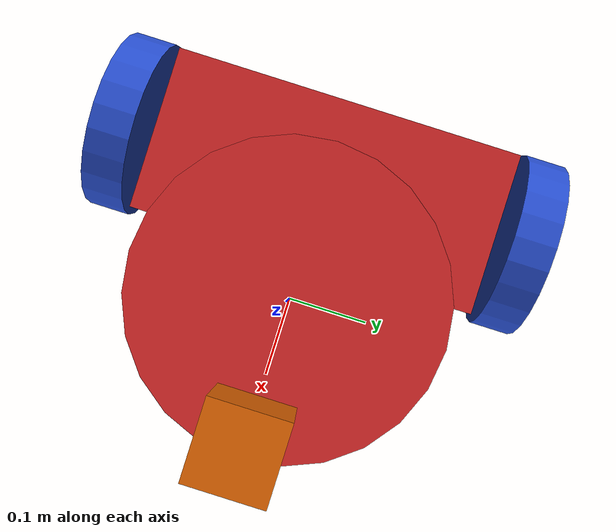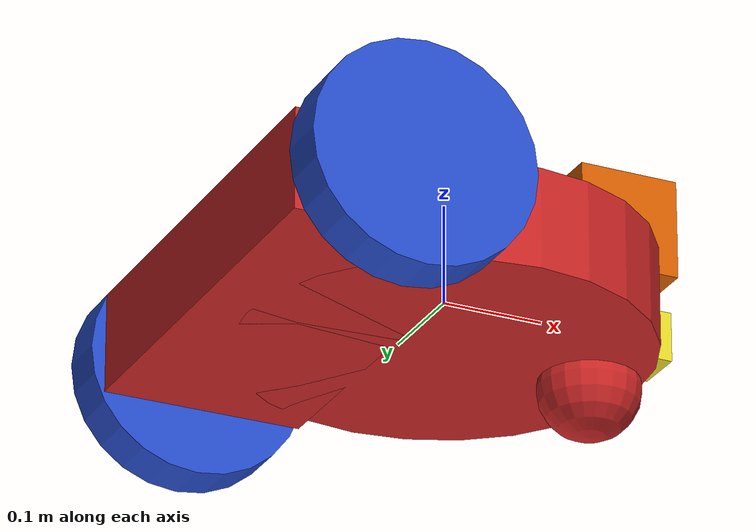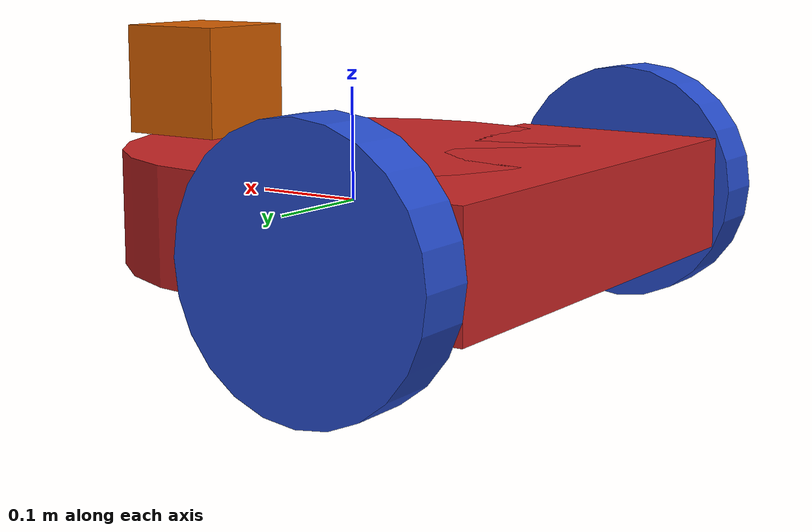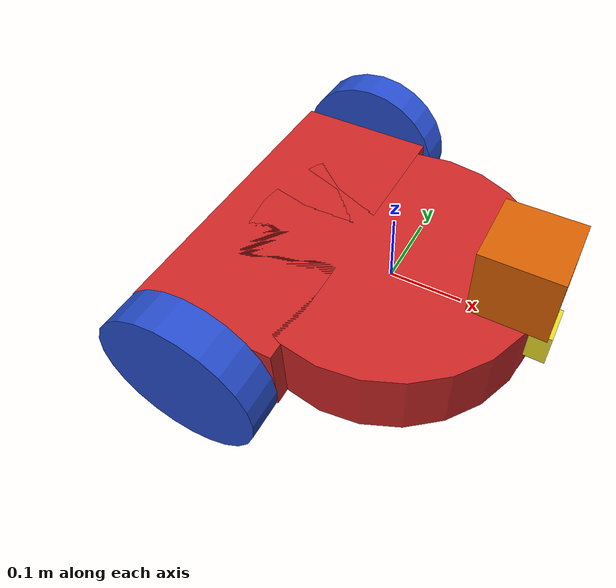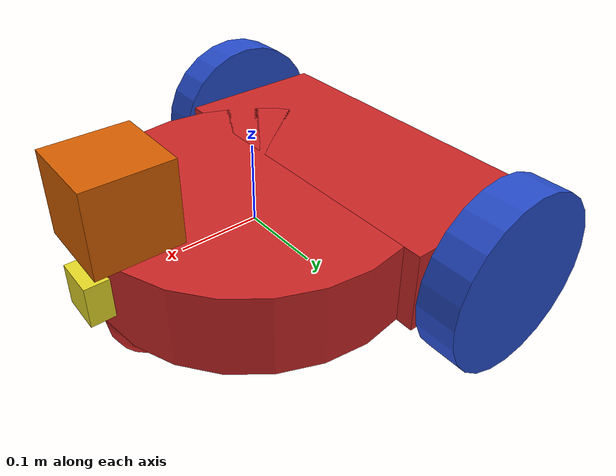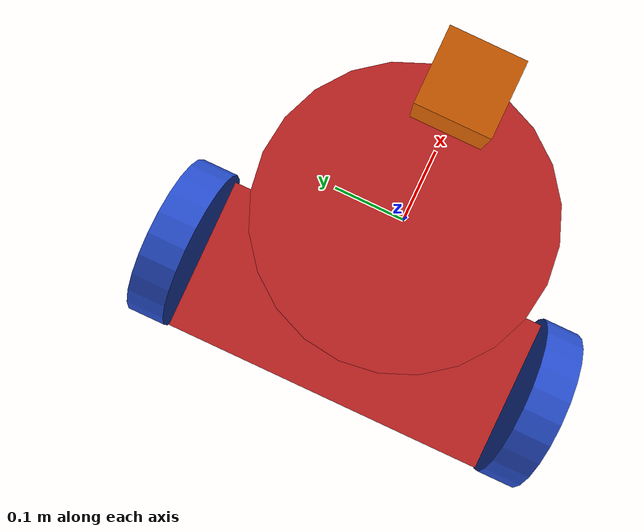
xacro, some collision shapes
<?xml version='1.0'?>

<robot name="my_robot" xmlns:xacro="http://www.ros.org/wiki/xacro">

<!-- Plugin Add -->
<xacro:include filename="$(find my_robot)/urdf/my_robot.gazebo" />

  <link name="robot_footprint"></link>

  <joint name="robot_footprint_joint" type="fixed">
    <origin xyz="0 0 0" rpy="0 0 0" />
    <parent link="robot_footprint"/>
    <child link="chassis" />
  </joint>

  <link name='chassis'>
    <pose>0 0 0.1 0 0 0</pose>

    <inertial>
      <mass value="8.0"/>
      <origin xyz="0.0 0 0" rpy=" 0 0 0"/>
      <inertia
          ixx="0.1" ixy="0" ixz="0"
          iyy="0.1" iyz="0"
          izz="0.1"
      />
    </inertial>

    <collision name='collision'>
      <origin xyz="0 0 0" rpy=" 0 0 0"/>
      <geometry>
        <cylinder radius=".2" length=".1"/>
      </geometry>
    </collision>

    <visual name='chassis_visual'>
      <origin xyz="0 0 0" rpy=" 0 0 0"/>
      <geometry>
        <cylinder radius=".2" length=".1"/>
      </geometry>
    </visual>

    <collision name='front_caster_collision'>
      <origin xyz="0.15 0 -0.059" rpy=" 0 0 0"/>
      <geometry>
        <sphere radius="0.05"/>
      </geometry>
    </collision>

    <visual name='front_caster_visual'>
      <origin xyz="0.15 0 -0.059" rpy=" 0 0 0"/>
      <geometry>
        <sphere radius="0.05"/>
      </geometry>
    </visual>

  </link>

<!-- right wheel link -->
  <link name="right_wheel">
   <visual>
    <origin xyz="0.0 0 0" rpy=" 0 1.5707 1.5707"/>
    <geometry>
      <cylinder length="0.05" radius="0.11"/>
    </geometry>
   </visual>
   <collision>
    <origin xyz="0.0 0 0" rpy=" 0 1.5707 1.5707"/>
     <geometry>
      <cylinder length="0.05" radius="0.11"/>
     </geometry>
  </collision>
  <inertial>
    <mass value="2"/>

    <inertia ixx="0.1" ixy="0.0" ixz="0.0" iyy="0.1" iyz="0.0" izz="0.1"/>
   </inertial>
  </link>
<!-- right wheel joint -->
  <joint type="continuous" name="right_wheel_hinge">
    <origin xyz="-0.15 -0.25 0" rpy="0 0 0"/>
    <child link="right_wheel"/>
    <parent link="chassis"/>
    <axis xyz="0 1 0" rpy="0 0 0"/>
    <limit effort="10000" velocity="1000"/>
    <dynamics damping="1.0" friction="1.0"/>
  </joint>
<!-- left wheel link -->
  <link name="left_wheel">
   <visual>
    <origin xyz="0.0 0 0" rpy=" 0 1.5707 1.5707"/>
    <geometry>
      <cylinder length="0.05" radius="0.11"/>
    </geometry>
   </visual>
   <collision>
    <origin xyz="0.0 0 0" rpy=" 0 1.5707 1.5707"/>
     <geometry>
      <cylinder length="0.05" radius="0.11"/>
     </geometry>
  </collision>
  <inertial>
    <mass value="2"/>
    <inertia ixx="0.1" ixy="0.0" ixz="0.0" iyy="0.1" iyz="0.0" izz="0.1"/>
   </inertial>
  </link>
<!-- left wheel joint -->
  <joint type="continuous" name="left_wheel_hinge">
    <origin xyz="-0.15 0.25 0" rpy="0 0 0"/>
    <child link="left_wheel"/>
    <parent link="chassis"/>
    <axis xyz="0 1 0" rpy="0 0 0"/>
    <limit effort="10000" velocity="1000"/>
    <dynamics damping="1.0" friction="1.0"/>
  </joint>

<!-- camera link-->
  <link name="camera">
   <visual>
    <origin xyz="0.0 0 0" rpy=" 0 0 0"/>
    <geometry>
      <box size=".05 .05 .05"/>
    </geometry>
   </visual>
   <collision>
    <origin xyz="0.0 0 0" rpy=" 0 0 0"/>
     <geometry>
      <box size=".05 .05 .05"/>
     </geometry>
  </collision>
  <inertial>
    <mass value="0.1"/>

    <inertia ixx="1e-6" ixy="0.0" ixz="0.0" iyy="1e-6" iyz="0.0" izz="1e-6"/>
   </inertial>
  </link>
<!-- camera joint -->
  <joint type="fixed" name="camera_joint">
    <origin xyz="0.2 0 0" rpy="0 0 0"/>
    <child link="camera"/>
    <parent link="chassis"/>
    <axis xyz="0 1 0"/>
  </joint>
<!-- lidar link-->
  <link name="hokuyo">
   <visual>
    <origin xyz="0.0 0 0" rpy=" 0 0 0"/>
    <geometry>
      <mesh filename="package://my_robot/meshes/hokuyo.dae"/>
    </geometry>
   </visual>
   <collision>
    <origin xyz="0.0 0 0" rpy=" 0 0 0"/>
     <geometry>
      <box size=".1 .1 .1"/>
     </geometry>
  </collision>
  <inertial>
    <mass value="1e-5"/>
    <inertia ixx="1e-6" ixy="0.0" ixz="0.0" iyy="1e-6" iyz="0.0" izz="1e-6"/>
   </inertial>
  </link>
<!-- lidar joint -->
  <joint type="fixed" name="hokuyo_joint">
    <origin xyz="0.17 0 0.1" rpy="0 0 0"/>
    <child link="hokuyo"/>
    <parent link="chassis"/>
    <axis xyz="0 1 0"/>
  </joint>

<!-- box link-->
  <link name="box_chassis">
   <visual>
    <origin xyz="0.0 0 0" rpy=" 0 0 0"/>
    <geometry>
      <box size=".2 .43 .1"/>
    </geometry>
   </visual>
   <collision>
    <origin xyz="0.0 0 0" rpy=" 0 0 0"/>
     <geometry>
      <box size=".2 .43 .1"/>
     </geometry>
  </collision>
  <inertial>
    <mass value="0.1"/>

    <inertia ixx="1e-6" ixy="0.0" ixz="0.0" iyy="1e-6" iyz="0.0" izz="1e-6"/>
   </inertial>
  </link>
<!-- box joint -->
  <joint type="fixed" name="box_chassis_joint">
    <origin xyz="-0.15 0 0" rpy="0 0 0"/>
    <child link="box_chassis"/>
    <parent link="chassis"/>
    <axis xyz="0 0 0"/>
  </joint>

<!-- Color -->
  <gazebo reference="left_wheel">
    <material>Gazebo/Blue</material>
  </gazebo>

  <gazebo reference="right_wheel">
    <material>Gazebo/Blue</material>
  </gazebo>

  <gazebo reference="chassis">
    <material>Gazebo/Red</material>
  </gazebo>

  <gazebo reference="camera">
    <material>Gazebo/Yellow</material>
  </gazebo>

  <gazebo reference="box_chassis">
   <material>Gazebo/Red</material>
  </gazebo>

</robot>
